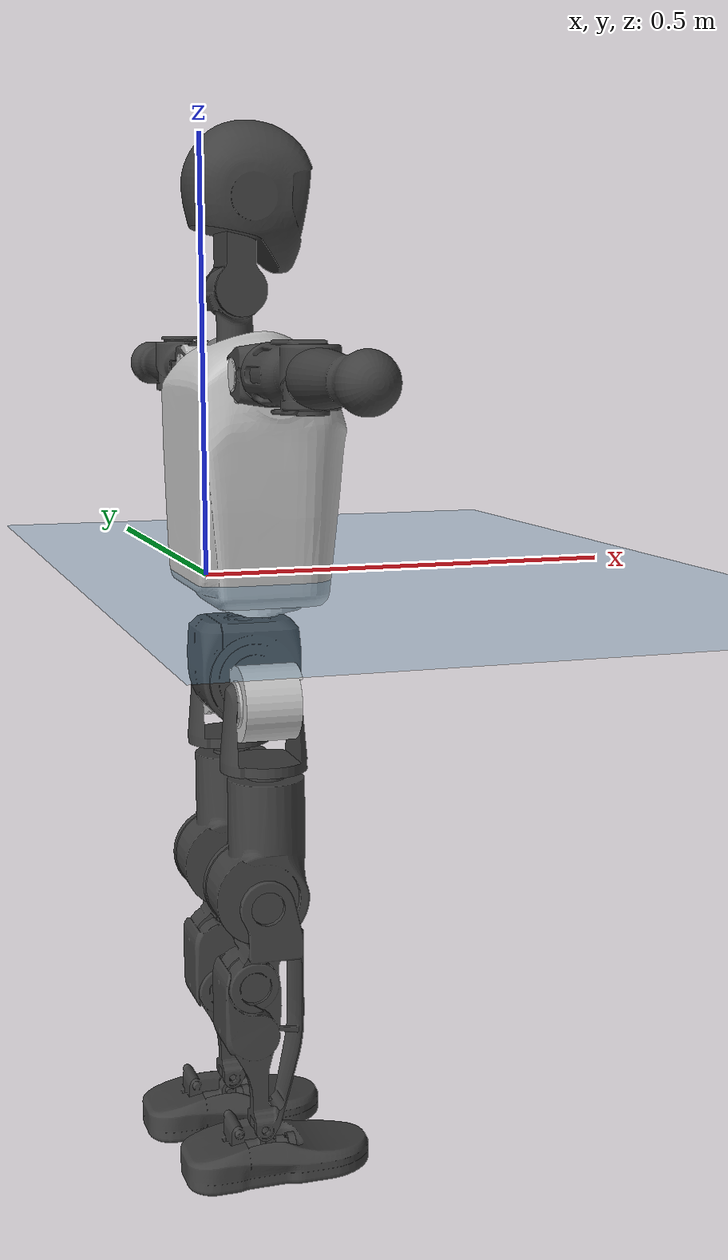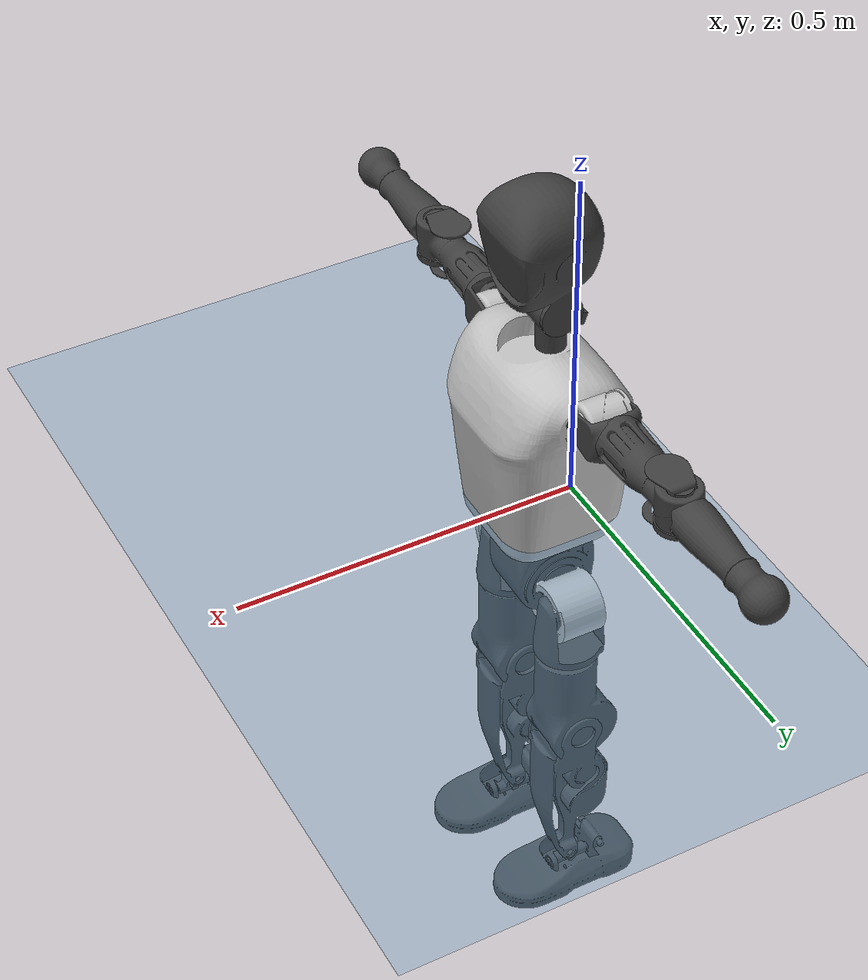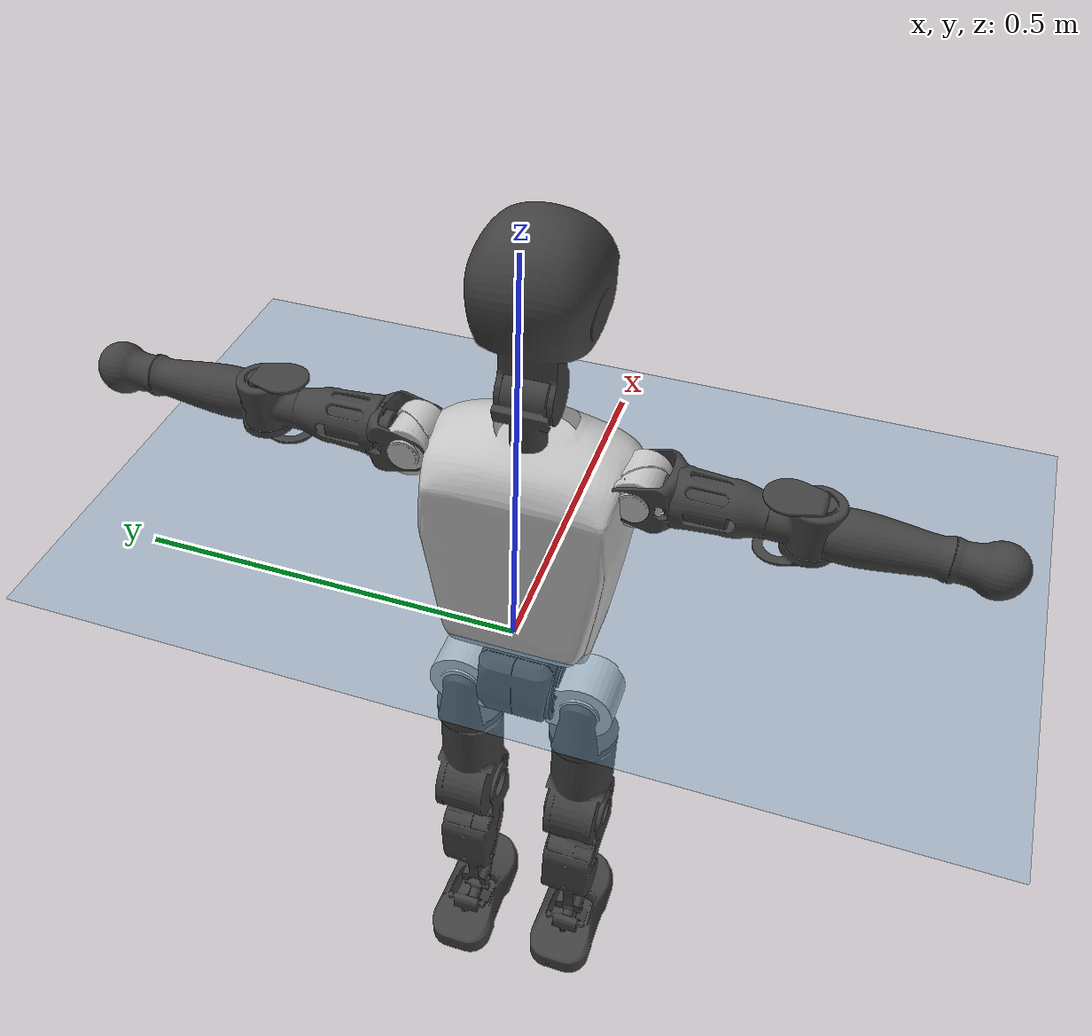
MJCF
<mujoco model="T1">
  <compiler angle="radian" assetdir="assets" balanceinertia="true" inertiafromgeom="false"/>

  <option timestep="0.005" density="1.2" viscosity="2e-05"/>

  <size nkey="1"/>

  <visual>
    <quality shadowsize="8192"/>
    <map shadowclip="0.5"/>
  </visual>

  <default>
    <default class="/">
      <joint armature="0.01" damping="0.01" frictionloss="0.1"/>
      <geom contype="0" conaffinity="0" group="1" solref="-1000 -80"/>
      <site size="0.01 0.005 0.005" group="5"/>
      <general forcelimited="true" biastype="affine" gainprm="25" biasprm="0 -25 -0.6"/>
      <default class="t1">
        <geom rgba="0.25 0.25 0.25 1"/>
        <default class="visual">
          <geom type="mesh" group="2"/>
        </default>
        <default class="collision">
          <geom group="3"/>
        </default>
        <default class="foot">
          <geom size="0.1115 0.05 0.015" type="box" condim="6" group="4" priority="1" solimp="0.015 1 0.015"/>
        </default>
        <default class="reward_collision_sphere">
          <geom group="5" rgba="1 0 0 1"/>
        </default>
      </default>
    </default>
  </default>

  <asset>
    <texture type="skybox" colorspace="auto" name="//unnamed_texture_0" builtin="gradient" rgb1="0.95 0.95 0.95" rgb2="0.95 0.95 0.95" width="100" height="600"/>
    <texture type="2d" colorspace="auto" name="texplane" builtin="checker" rgb1="0.345 0.575 0.748" rgb2="0.345 0.575 0.748" markrgb="1 1 1" width="512" height="512"/>
    <material name="MatPlane" class="/" texture="texplane" texuniform="true" texrepeat="2 2" specular="0.9"/>
    <mesh name="Trunk" class="/" file="Trunk.stl"/>
    <mesh name="H1" class="/" file="H1.stl"/>
    <mesh name="H2" class="/" file="H2.stl"/>
    <mesh name="AL1" class="/" file="AL1.stl"/>
    <mesh name="AL2" class="/" file="AL2.stl"/>
    <mesh name="AL3" class="/" file="AL3.stl"/>
    <mesh name="left_hand_link" class="/" file="left_hand_link.stl"/>
    <mesh name="AR1" class="/" file="AR1.stl"/>
    <mesh name="AR2" class="/" file="AR2.stl"/>
    <mesh name="AR3" class="/" file="AR3.stl"/>
    <mesh name="right_hand_link" class="/" file="right_hand_link.stl"/>
    <mesh name="Waist" class="/" file="Waist.stl"/>
    <mesh name="Hip_Pitch_Left" class="/" file="Hip_Pitch_Left.stl"/>
    <mesh name="Hip_Roll_Left" class="/" file="Hip_Roll_Left.stl"/>
    <mesh name="Hip_Yaw_Left" class="/" file="Hip_Yaw_Left.stl"/>
    <mesh name="Shank_Left" class="/" file="Shank_Left.stl"/>
    <mesh name="Ankle_Cross_Left" class="/" file="Ankle_Cross_Left.stl"/>
    <mesh name="left_foot_link" class="/" file="left_foot_link.stl"/>
    <mesh name="Hip_Pitch_Right" class="/" file="Hip_Pitch_Right.stl"/>
    <mesh name="Hip_Roll_Right" class="/" file="Hip_Roll_Right.stl"/>
    <mesh name="Hip_Yaw_Right" class="/" file="Hip_Yaw_Right.stl"/>
    <mesh name="Shank_Right" class="/" file="Shank_Right.stl"/>
    <mesh name="Ankle_Cross_Right" class="/" file="Ankle_Cross_Right.stl"/>
    <mesh name="right_foot_link" class="/" file="right_foot_link.stl"/>
  </asset>

  <worldbody>
    <geom name="floor" class="/" size="100 100 0.125" type="plane" group="0" material="MatPlane"/>
    <light name="toplight_shadow" class="/" pos="0 0 5" dir="0.0990148 0.0990148 -0.990148" type="directional" ambient="0.04 0.04 0.04" diffuse="0.55 0.55 0.55" specular="0.12 0.12 0.12"/>
    <light name="toplight_fill" class="/" pos="0 0 5" dir="0.0990148 0.0990148 -0.990148" type="directional" castshadow="false" ambient="0.04 0.04 0.04" diffuse="0.3 0.3 0.3" specular="0.08 0.08 0.08"/>
    <body name="trunk" childclass="t1" pos="0.000560278 -0.00250061 0.000949135" quat="1 -0.000245897 -0.000281176 -0.000238741">
      <inertial pos="0.0351884 -0.00100407 0.108709" quat="0.99995 0.000609224 -0.0100083 0.000196515" mass="6.73144" diaginertia="0.0112062 0.0228618 0.0756379"/>
      <joint name="//unnamed_joint_0" type="free" armature="0" damping="0" frictionloss="0"/>
      <geom name="//unnamed_geom_1" class="visual" rgba="0.76 0.76 0.76 1" mesh="Trunk"/>
      <geom name="//unnamed_geom_2" class="collision" size="0.0627475 0.0836634 0.125495" pos="0.0396482 0 0.127069" type="box"/>
      <geom name="//unnamed_geom_3" class="reward_collision_sphere" size="0.0962129" pos="0.0396482 0 0.105891"/>
      <geom name="//unnamed_geom_4" class="reward_collision_sphere" size="0.0125495" pos="0.0396482 0.0671663 0"/>
      <geom name="//unnamed_geom_5" class="reward_collision_sphere" size="0.0125495" pos="0.0396482 -0.0671663 0"/>
      <geom name="//unnamed_geom_6" class="reward_collision_sphere" size="0.0125495" pos="0.0396482 0.0845505 0.190603"/>
      <geom name="//unnamed_geom_7" class="reward_collision_sphere" size="0.0125495" pos="0.0396482 -0.0845505 0.190603"/>
      <site name="imu" pos="0.00760201 0.010802 -0.00752455" size="0.00836634"/>
      <camera name="track" pos="0 -1.58038 0" quat="0.707107 0.707107 0 0" mode="trackcom"/>
      <camera name="ego_camera" pos="0.0806179 0 0.444741" quat="-0.5 -0.5 0.5 0.5"/>
      <body name="H1" pos="0.0371952 0.00218775 0.260595" quat="0.999999 0.00120616 0.000447994 8.12339e-05">
        <inertial pos="-0.00342453 -0.00279312 0.0633794" quat="0.762999 -0.0124752 -0.00141789 0.646278" mass="0.272262" diaginertia="3.19742e-05 7.33997e-05 0.000201377"/>
        <joint name="AAHead_yaw" pos="0 0 0" axis="-0.00412469 -0.00124018 0.999991" range="-1.61856 1.5435" armature="0.00754453" damping="0.0125912" frictionloss="0.0842291"/>
        <geom name="//unnamed_geom_8" class="visual" mesh="H1"/>
        <body name="H2" pos="0.000771934 -0.00113629 0.0643711" quat="1 0.000394912 0.000699622 -0.000369347">
          <inertial pos="0.00436566 0.000310628 0.103435" quat="0.988167 0.111262 -0.0692103 -0.0797332" mass="0.369214" diaginertia="0.000256447 0.000611923 0.00230668"/>
          <joint name="Head_pitch" pos="0 0 0" axis="0.00885763 -0.99991 0.0100409" range="-1.20545 0.349216" armature="0.00877792" damping="0.00403708" frictionloss="0.0730763"/>
          <geom name="//unnamed_geom_9" class="visual" mesh="H2"/>
          <geom name="//unnamed_geom_10" class="collision" size="0.0669307" pos="0.00660803 0 0.11648"/>
          <geom name="//unnamed_geom_11" class="reward_collision_sphere" size="0.075297" pos="0.0132161 0 0.105891"/>
        </body>
      </body>
      <body name="AL1" pos="0.0366631 0.0889467 0.233429" quat="1 -1.05169e-05 0.000511297 -0.000197686">
        <inertial pos="0.000444894 0.0357097 -0.00316636" quat="0.502577 0.495814 -0.50483 0.496721" mass="0.308027" diaginertia="0.000167191 0.000388635 0.000377161"/>
        <joint name="Left_Shoulder_Pitch" pos="0 0 0" axis="0.0015975 0.999982 -0.00573957" stiffness="0.0103945" range="-3.33593 1.17228" armature="0.00761117" damping="0.0064205" frictionloss="0.0806379"/>
        <geom name="//unnamed_geom_12" class="visual" rgba="0.76 0.76 0.76 1" mesh="AL1"/>
        <body name="AL2" pos="0.00369015 0.0406142 -0.00148687" quat="1 -0.000201651 6.70414e-05 1.21986e-05">
          <inertial pos="0.00484255 0.0276064 -0.000358321" quat="0.484018 0.513218 -0.489421 0.512641" mass="0.0973506" diaginertia="5.14133e-05 0.000107125 0.000242044"/>
          <joint name="Left_Shoulder_Roll" pos="0 0 0" axis="-0.999914 -0.00727071 0.0109266" range="-1.55591 1.76369" armature="0.00875445" damping="0.0129075" frictionloss="0.0865706"/>
          <geom name="//unnamed_geom_13" class="visual" mesh="AL2"/>
          <body name="AL3" pos="0.000184359 0.0466259 0.00272154" quat="1 -0.000280644 -3.50175e-05 -0.000120648">
            <inertial pos="-0.00261032 0.0676518 -9.47547e-06" quat="0.70924 0.704947 -0.00504748 0.00159646" mass="0.578521" diaginertia="0.00163793 0.00387837 0.000834288"/>
            <joint name="Left_Elbow_Pitch" pos="0 0 0" axis="0.000170266 -1 -0.0009144" range="-2.32661 2.23731" armature="0.00819608" damping="0" frictionloss="0.0769575"/>
            <geom name="//unnamed_geom_14" class="visual" mesh="AL3"/>
            <geom name="//unnamed_geom_15" class="collision" size="0.025099 0.0627475" pos="0 0.0395096 0" quat="0.707105 0.707108 0 0" type="cylinder"/>
            <geom name="//unnamed_geom_16" class="reward_collision_sphere" size="0.0301188"/>
            <body name="left_hand_link" pos="-3.07425e-05 0.11819 0.00197273" quat="1 -0.000488542 0.000206172 -0.000577445">
              <inertial pos="-0.000382986 0.0850498 0.000369287" quat="0.716667 0.697399 -0.000105851 -0.00487437" mass="0.192229" diaginertia="0.00103933 0.00244655 0.00028885"/>
              <joint name="Left_Elbow_Yaw" pos="0 0 0" axis="-0.00120289 0.000982694 0.999999" range="-2.47215 -0.0450308" armature="0.00927084" damping="0.0223787" frictionloss="0.084236"/>
              <geom name="//unnamed_geom_17" class="visual" mesh="left_hand_link"/>
              <geom name="//unnamed_geom_18" class="collision" size="0.025099 0.0732054" pos="0 0.102725 0" quat="0.707105 0.707108 0 0" type="cylinder"/>
              <geom name="//unnamed_geom_19" class="reward_collision_sphere" size="0.0418317"/>
              <geom name="//unnamed_geom_20" class="reward_collision_sphere" size="0.0292822" pos="0 0.0869211 0"/>
              <geom name="//unnamed_geom_21" class="reward_collision_sphere" size="0.0292822" pos="0 0.169891 0"/>
            </body>
          </body>
        </body>
      </body>
      <body name="AR1" pos="0.0376045 -0.0786223 0.231923" quat="0.999999 0.000898561 9.24558e-05 0.000822801">
        <inertial pos="-0.0019483 -0.0386041 0.00271597" quat="0.50769 0.492503 -0.504362 0.495288" mass="0.307525" diaginertia="0.000167388 0.000392692 0.000379732"/>
        <joint name="Right_Shoulder_Pitch" pos="0 0 0" axis="-0.0134173 -0.999894 0.00567104" range="-1.18609 3.29986" armature="0.0072169" damping="0.0145567" frictionloss="0.0724843"/>
        <geom name="//unnamed_geom_22" class="visual" rgba="0.76 0.76 0.76 1" mesh="AR1"/>
        <body name="AR2" pos="0.000449524 -0.0358506 0.000982098" quat="1 3.73391e-05 0.000207296 0.00020505">
          <inertial pos="-0.000375926 -0.0275731 -0.0010839" quat="0.511094 0.488195 -0.506793 0.493567" mass="0.0914765" diaginertia="4.9725e-05 0.000107523 0.000232391"/>
          <joint name="Right_Shoulder_Roll" pos="0 0 0" axis="-0.999995 0.000652802 0.00294638" range="-1.78993 1.52105" armature="0.00829569" damping="0.00425761" frictionloss="0.0796339"/>
          <geom name="//unnamed_geom_23" class="visual" mesh="AR2"/>
          <body name="AR3" pos="-0.00255053 -0.0490866 0.000824225" quat="1 -5.00522e-05 -3.03058e-05 -2.17207e-05">
            <inertial pos="-0.00267158 -0.0679622 0.00317188" quat="0.708307 0.705849 -0.00767411 -0.00434954" mass="0.59176" diaginertia="0.00160546 0.00369033 0.000780132"/>
            <joint name="Right_Elbow_Pitch" pos="0 0 0" axis="-0.0110304 0.999935 -0.00286822" range="-2.32364 2.32665" armature="0.00787872" damping="0.0144868" frictionloss="0.0942687"/>
            <geom name="//unnamed_geom_24" class="visual" mesh="AR3"/>
            <geom name="//unnamed_geom_25" class="collision" size="0.025099 0.0627475" pos="0 -0.0395096 0" quat="0.707105 0.707108 0 0" type="cylinder"/>
            <geom name="//unnamed_geom_26" class="reward_collision_sphere" size="0.0301188"/>
            <body name="right_hand_link" pos="-0.00339826 -0.118021 -0.000611261" quat="1 0.000169352 -5.04557e-05 0.000161255">
              <inertial pos="-0.00183526 -0.0837659 0.00106125" quat="0.706625 0.707581 0.00288447 -0.00132597" mass="0.203151" diaginertia="0.0010913 0.00251399 0.000290457"/>
              <joint name="Right_Elbow_Yaw" pos="0 0 0" axis="-5.36408e-05 -6.08538e-05 1" range="-0.0154303 2.44131" armature="0.00735582" damping="0.0165642" frictionloss="0.0843344"/>
              <geom name="//unnamed_geom_27" class="visual" mesh="right_hand_link"/>
              <geom name="//unnamed_geom_28" class="collision" size="0.025099 0.0732054" pos="0 -0.102725 0" quat="0.707105 0.707108 0 0" type="cylinder"/>
              <geom name="//unnamed_geom_29" class="reward_collision_sphere" size="0.0418317"/>
              <geom name="//unnamed_geom_30" class="reward_collision_sphere" size="0.0292822" pos="0 -0.0869211 0"/>
              <geom name="//unnamed_geom_31" class="reward_collision_sphere" size="0.0292822" pos="0 -0.169891 0"/>
            </body>
          </body>
        </body>
      </body>
      <body name="Waist" pos="0.0424895 0.000481532 -0.119524" quat="1 -0.000795425 0.000339309 -0.000259501">
        <inertial pos="0.00498796 0.000457024 0.00675064" quat="0.984066 0.00209553 -0.177767 -0.00290266" mass="1.46653" diaginertia="0.000638243 0.00154593 0.00608041"/>
        <joint name="Waist" pos="0 0 0" axis="-0.00658857 -0.0121957 0.999904" range="-1.62214 1.51655" armature="0.00837381" damping="0.0152962" frictionloss="0.0927697"/>
        <geom name="//unnamed_geom_32" class="visual" mesh="Waist"/>
        <body name="Hip_Pitch_Left" pos="0.0026667 0.0805335 -0.000723493" quat="1 7.63677e-05 3.65778e-05 0.000597131">
          <inertial pos="-0.00172024 -0.00574907 -0.0188372" quat="0.974476 0.223853 0.00952899 0.0140162" mass="0.580243" diaginertia="0.000220566 0.00043349 0.00161551"/>
          <joint name="Left_Hip_Pitch" pos="0 0 0" axis="0.00406584 0.999888 -0.0143991" stiffness="0.012871" range="-1.76892 1.57047" armature="0.00732863" damping="0.00365234" frictionloss="0.0797952"/>
          <geom name="//unnamed_geom_33" class="visual" rgba="0.76 0.76 0.76 1" mesh="Hip_Pitch_Left"/>
          <body name="Hip_Roll_Left" pos="-0.000925972 -0.00171646 -0.0227111" quat="1 0.000278394 -0.000753194 0.000117623">
            <inertial pos="-0.00086078 0.00132731 -0.0571675" quat="0.708208 -0.00397571 -0.00211496 0.705989" mass="0.227038" diaginertia="0.000220424 0.000468243 0.000694699"/>
            <joint name="Left_Hip_Roll" pos="0 0 0" axis="-0.999883 -0.014949 -0.00314761" stiffness="0.00364786" range="-1.6223 0.182989" armature="0.0089459" damping="0.0207039" frictionloss="0.0866704"/>
            <geom name="//unnamed_geom_34" class="visual" mesh="Hip_Roll_Left"/>
            <geom name="//unnamed_geom_35" class="reward_collision_sphere" size="0.0460149"/>
            <body name="Hip_Yaw_Left" pos="-4.31427e-05 -0.00131672 -0.0904591" quat="1 -0.000158889 -4.7295e-05 9.30661e-05">
              <inertial pos="-0.00687198 -0.000222581 -0.0918493" quat="0.696691 -0.0336997 -0.031441 0.715889" mass="1.29593" diaginertia="0.00345633 0.00818894 0.00367166"/>
              <joint name="Left_Hip_Yaw" pos="0 0 0" axis="0.00399619 -6.66043e-05 -0.999992" range="-1.0472 0.953844" armature="0.00938145" damping="0.0236882" frictionloss="0.0819718"/>
              <geom name="//unnamed_geom_36" class="visual" mesh="Hip_Yaw_Left"/>
              <geom name="//unnamed_geom_37" class="collision" size="0.0418317 0.0669307" type="cylinder"/>
              <body name="Shank_Left" pos="-0.00912186 -0.00278101 -0.141169" quat="0.999999 -0.000767434 0.00072073 0.000244428">
                <inertial pos="-0.00567558 0.00119667 -0.131962" quat="0.997508 -0.00511712 -0.0172512 0.0682216" mass="0.984287" diaginertia="0.0042781 0.0100922 0.00236094"/>
                <joint name="Left_Knee_Pitch" pos="0 0 0" axis="-0.00344923 0.999984 -0.00459159" range="0.044982 2.35183" armature="0.00819406" damping="0" frictionloss="0.0729041"/>
                <geom name="//unnamed_geom_38" class="visual" mesh="Shank_Left"/>
                <geom name="//unnamed_geom_39" class="collision" size="0.0418317 0.0627475" pos="0 0 -0.127069" type="cylinder"/>
                <geom name="//unnamed_geom_40" class="reward_collision_sphere" size="0.0543812"/>
                <body name="Ankle_Cross_Left" pos="-0.00432695 -0.00338851 -0.297212" quat="0.999999 -0.000420391 -0.000834943 0.000880599">
                  <inertial pos="-0.00148261 -0.000844492 -0.00811251" quat="0.442098 0.54994 0.552486 0.443705" mass="0.0419474" diaginertia="3.74668e-06 8.00218e-06 1.48594e-05"/>
                  <joint name="Left_Ankle_Pitch" pos="0 0 0" axis="-0.00223277 0.999997 -0.00105268" stiffness="0.0114057" range="-0.907823 0.39258" armature="0.0084933" damping="0.0218104" frictionloss="0.0929038"/>
                  <geom name="//unnamed_geom_41" class="visual" mesh="Ankle_Cross_Left"/>
                  <body name="left_foot_link" pos="-0.00331094 0.00205308 -0.013902" quat="1 -0.000141624 -0.000269894 0.000802421">
                    <inertial pos="0.000676771 -0.000971101 -0.0122711" quat="-0.00837639 0.619553 0.00809825 0.784868" mass="0.392018" diaginertia="0.000350048 0.000756228 0.00293972"/>
                    <joint name="Left_Ankle_Roll" pos="0 0 0" axis="-1 -0.000743813 0.000562921" range="-0.432309 0.460242" armature="0.00945113" damping="0.00571184" frictionloss="0.0867552"/>
                    <geom name="//unnamed_geom_42" class="visual" mesh="left_foot_link"/>
                    <geom name="left_foot" class="foot" size="0.102134 0.0385403 0.0120893" pos="0.00660803 0 -0.0158836"/>
                    <geom name="//unnamed_geom_44" class="reward_collision_sphere" size="0.043505" pos="0.00660803 0 -0.0158836"/>
                    <geom name="//unnamed_geom_45" class="reward_collision_sphere" size="0.025099" pos="0.0627762 -0.0181744 -0.0158836"/>
                    <geom name="//unnamed_geom_46" class="reward_collision_sphere" size="0.025099" pos="-0.0462562 -0.0181744 -0.0158836"/>
                    <site name="left_foot" class="foot" pos="0.00660803 0 -0.0158836" size="0.00836634"/>
                  </body>
                </body>
              </body>
            </body>
          </body>
        </body>
        <body name="Hip_Pitch_Right" pos="0.00425475 -0.0850124 0.000340964" quat="1 0.000103008 0.000116781 9.97934e-06">
          <inertial pos="0.00273451 0.00485171 -0.0168641" quat="0.972667 -0.231614 0.0154749 -0.00593941" mass="0.601274" diaginertia="0.000222194 0.000469508 0.00163825"/>
          <joint name="Right_Hip_Pitch" pos="0 0 0" axis="0.000766765 -0.999999 0.00081753" range="-1.62371 1.8069" armature="0.00911908" damping="0.011003" frictionloss="0.0723673"/>
          <geom name="//unnamed_geom_47" class="visual" rgba="0.76 0.76 0.76 1" mesh="Hip_Pitch_Right"/>
          <body name="Hip_Roll_Right" pos="-0.00118735 0.000198077 -0.0212435" quat="1 -0.000112403 0.000108942 2.33122e-05">
            <inertial pos="0.00323019 0.00241455 -0.0553647" quat="0.706035 -0.00731944 -0.00487184 0.708122" mass="0.228999" diaginertia="0.000226793 0.000485968 0.000712476"/>
            <joint name="Right_Hip_Roll" pos="0 0 0" axis="-0.999853 0.00779122 0.0152466" range="-0.200254 1.60793" armature="0.00903223" damping="0.0126829" frictionloss="0.0892584"/>
            <geom name="//unnamed_geom_48" class="visual" mesh="Hip_Roll_Right"/>
            <geom name="//unnamed_geom_49" class="reward_collision_sphere" size="0.0460149"/>
            <body name="Hip_Yaw_Right" pos="-0.000695312 -0.00295776 -0.0859909" quat="1 5.41562e-05 -0.000470368 5.44077e-05">
              <inertial pos="-0.0058819 -0.00209756 -0.0928772" quat="0.706286 -0.0350168 -0.032825 0.706298" mass="1.3179" diaginertia="0.0033284 0.00804123 0.0035346"/>
              <joint name="Right_Hip_Yaw" pos="0 0 0" axis="-0.0113423 -0.00401168 -0.999928" stiffness="0.00148076" range="-0.976178 1.02838" armature="0.0079314" damping="0" frictionloss="0.0846859"/>
              <geom name="//unnamed_geom_50" class="visual" mesh="Hip_Yaw_Right"/>
              <geom name="//unnamed_geom_51" class="collision" size="0.0418317 0.0669307" type="cylinder"/>
              <body name="Shank_Right" pos="-0.0101046 -0.000287748 -0.143703" quat="0.999999 -0.000676623 1.14668e-05 -0.000807006">
                <inertial pos="-0.00189476 -0.000155106 -0.128337" quat="0.999166 -0.000593685 -0.0205236 -0.035296" mass="0.978608" diaginertia="0.00431968 0.0104944 0.00259107"/>
                <joint name="Right_Knee_Pitch" pos="0 0 0" axis="-0.000573012 -0.999994 0.0034428" stiffness="0.00886718" range="-2.33078 0.0311262" armature="0.0085192" damping="0.00212183" frictionloss="0.0847896"/>
                <geom name="//unnamed_geom_52" class="visual" mesh="Shank_Right"/>
                <geom name="//unnamed_geom_53" class="collision" size="0.0418317 0.0627475" pos="0 0 -0.127069" type="cylinder"/>
                <geom name="//unnamed_geom_54" class="reward_collision_sphere" size="0.0543812"/>
                <body name="Ankle_Cross_Right" pos="0.00504092 -0.000178087 -0.294824" quat="1 -5.30752e-06 -1.53222e-06 -1.69005e-05">
                  <inertial pos="-0.00298121 0.000897639 -0.00732218" quat="0.442798 0.550562 0.552088 0.44273" mass="0.0424411" diaginertia="3.76032e-06 7.8258e-06 1.48335e-05"/>
                  <joint name="Right_Ankle_Pitch" pos="0 0 0" axis="0.00645026 -0.999976 0.00249066" stiffness="0.0108886" range="-0.29757 0.889888" armature="0.008293" damping="0.0102911" frictionloss="0.0780257"/>
                  <geom name="//unnamed_geom_55" class="visual" mesh="Ankle_Cross_Right"/>
                  <body name="right_foot_link" pos="0.00167328 -0.00381128 -0.0111395" quat="1 0.000243628 -0.000437087 3.77509e-05">
                    <inertial pos="0.000196958 0.00073101 -0.00929878" quat="-0.0075079 0.627165 -0.00600079 0.778827" mass="0.389709" diaginertia="0.000331858 0.000742037 0.0030267"/>
                    <joint name="Right_Ankle_Roll" pos="0 0 0" axis="-0.999942 -0.00176112 -0.0105851" range="-0.472721 0.394288" armature="0.008429" damping="0.0130943" frictionloss="0.0906239"/>
                    <geom name="//unnamed_geom_56" class="visual" mesh="right_foot_link"/>
                    <geom name="right_foot" class="foot" size="0.0950948 0.0477185 0.0122006" pos="0.00660803 0 -0.0158836"/>
                    <geom name="//unnamed_geom_58" class="reward_collision_sphere" size="0.0334653"/>
                    <geom name="//unnamed_geom_59" class="reward_collision_sphere" size="0.025099" pos="0.00660803 0 -0.0158836"/>
                    <geom name="//unnamed_geom_60" class="reward_collision_sphere" size="0.025099" pos="0.0627762 0.0181744 -0.0158836"/>
                    <geom name="//unnamed_geom_61" class="reward_collision_sphere" size="0.025099" pos="-0.0462562 0.0181744 -0.0158836"/>
                    <site name="right_foot" class="foot" pos="0.00660803 0 -0.0158836" size="0.00836634"/>
                  </body>
                </body>
              </body>
            </body>
          </body>
        </body>
      </body>
    </body>
  </worldbody>

  <contact>
    <pair class="/" geom1="floor" geom2="left_foot" name="//unnamed_contact_0"/>
    <pair class="/" geom1="floor" geom2="right_foot" name="//unnamed_contact_1"/>
  </contact>

  <actuator>
    <general name="AAHead_yaw" class="/" joint="AAHead_yaw" forcerange="-5.29102 5.29102" gainprm="21.8693" biasprm="0 -21.8693 -0.527377"/>
    <general name="Head_pitch" class="/" joint="Head_pitch" forcerange="-6.43898 6.43898" gainprm="21.8693" biasprm="0 -21.8693 -0.527377"/>
    <general name="Left_Shoulder_Pitch" class="/" joint="Left_Shoulder_Pitch" forcerange="-16.5417 16.5417" gainprm="21.8693" biasprm="0 -21.8693 -0.527377"/>
    <general name="Left_Shoulder_Roll" class="/" joint="Left_Shoulder_Roll" forcerange="-15.4526 15.4526" gainprm="21.8693" biasprm="0 -21.8693 -0.527377"/>
    <general name="Left_Elbow_Pitch" class="/" joint="Left_Elbow_Pitch" forcerange="-13.686 13.686" gainprm="21.8693" biasprm="0 -21.8693 -0.527377"/>
    <general name="Left_Elbow_Yaw" class="/" joint="Left_Elbow_Yaw" forcerange="-15.5809 15.5809" gainprm="21.8693" biasprm="0 -21.8693 -0.527377"/>
    <general name="Right_Shoulder_Pitch" class="/" joint="Right_Shoulder_Pitch" forcerange="-14.1575 14.1575" gainprm="21.8693" biasprm="0 -21.8693 -0.527377"/>
    <general name="Right_Shoulder_Roll" class="/" joint="Right_Shoulder_Roll" forcerange="-14.5949 14.5949" gainprm="21.8693" biasprm="0 -21.8693 -0.527377"/>
    <general name="Right_Elbow_Pitch" class="/" joint="Right_Elbow_Pitch" forcerange="-13.7951 13.7951" gainprm="21.8693" biasprm="0 -21.8693 -0.527377"/>
    <general name="Right_Elbow_Yaw" class="/" joint="Right_Elbow_Yaw" forcerange="-13.7395 13.7395" gainprm="21.8693" biasprm="0 -21.8693 -0.527377"/>
    <general name="Waist" class="/" joint="Waist" forcerange="-23.0086 23.0086" gainprm="21.8693" biasprm="0 -21.8693 -0.527377"/>
    <general name="Left_Hip_Pitch" class="/" joint="Left_Hip_Pitch" forcerange="-37.6147 37.6147" gainprm="21.8693" biasprm="0 -21.8693 -0.527377"/>
    <general name="Left_Hip_Roll" class="/" joint="Left_Hip_Roll" forcerange="-22.7973 22.7973" gainprm="21.8693" biasprm="0 -21.8693 -0.527377"/>
    <general name="Left_Hip_Yaw" class="/" joint="Left_Hip_Yaw" forcerange="-22.8462 22.8462" gainprm="21.8693" biasprm="0 -21.8693 -0.527377"/>
    <general name="Left_Knee_Pitch" class="/" joint="Left_Knee_Pitch" forcerange="-54.8744 54.8744" gainprm="21.8693" biasprm="0 -21.8693 -0.527377"/>
    <general name="Left_Ankle_Pitch" class="/" joint="Left_Ankle_Pitch" forcerange="-15.89 15.89" gainprm="21.8693" biasprm="0 -21.8693 -0.527377"/>
    <general name="Left_Ankle_Roll" class="/" joint="Left_Ankle_Roll" forcerange="-12.7159 12.7159" gainprm="21.8693" biasprm="0 -21.8693 -0.527377"/>
    <general name="Right_Hip_Pitch" class="/" joint="Right_Hip_Pitch" forcerange="-36.6848 36.6848" gainprm="21.8693" biasprm="0 -21.8693 -0.527377"/>
    <general name="Right_Hip_Roll" class="/" joint="Right_Hip_Roll" forcerange="-24.6981 24.6981" gainprm="21.8693" biasprm="0 -21.8693 -0.527377"/>
    <general name="Right_Hip_Yaw" class="/" joint="Right_Hip_Yaw" forcerange="-24.1101 24.1101" gainprm="21.8693" biasprm="0 -21.8693 -0.527377"/>
    <general name="Right_Knee_Pitch" class="/" joint="Right_Knee_Pitch" forcerange="-46.9519 46.9519" gainprm="21.8693" biasprm="0 -21.8693 -0.527377"/>
    <general name="Right_Ankle_Pitch" class="/" joint="Right_Ankle_Pitch" forcerange="-17.1498 17.1498" gainprm="21.8693" biasprm="0 -21.8693 -0.527377"/>
    <general name="Right_Ankle_Roll" class="/" joint="Right_Ankle_Roll" forcerange="-12.7185 12.7185" gainprm="21.8693" biasprm="0 -21.8693 -0.527377"/>
  </actuator>

  <sensor>
    <gyro site="imu" name="imu_angular_velocity"/>
    <velocimeter site="imu" name="imu_linear_velocity"/>
    <framelinvel objtype="site" objname="left_foot" name="left_foot_global_linear_velocity"/>
    <framelinvel objtype="site" objname="right_foot" name="right_foot_global_linear_velocity"/>
  </sensor>

  <keyframe>
    <key name="home" qpos="0 0 0.6385 1 0 0 0 0 0 0 1.4 0 -0.4 0 -1.4 0 0.4 0 -0.4 0 0 0.8 -0.4 0 0.4 0 0 -0.8 0.4 0"/>
  </keyframe>
</mujoco>
